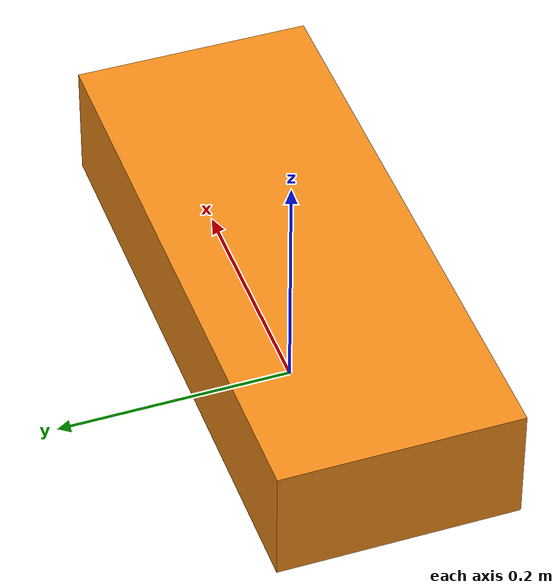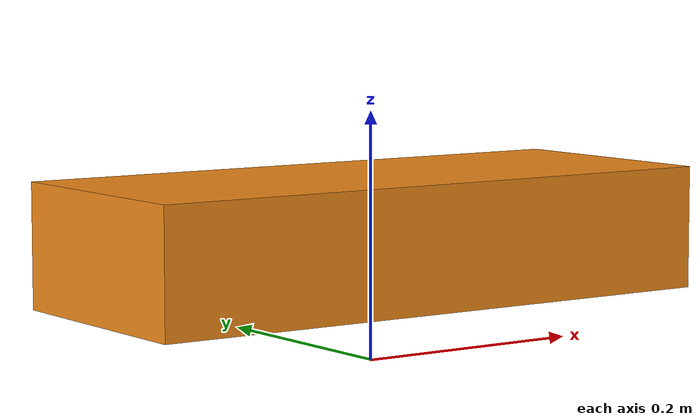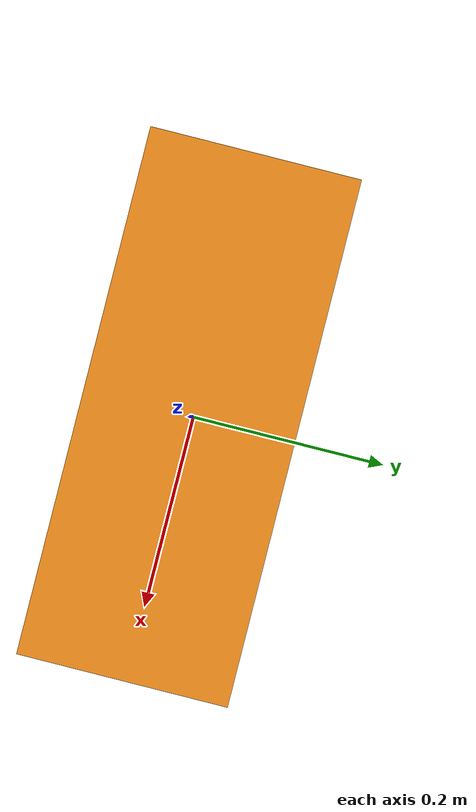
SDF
<?xml version='1.0'?>
<sdf version='1.4'>
<model name="mobot" xmlns:xacro="http://www.ros.org/wiki/xacro">
<!-- описание модели между тэгами model -->

<!-- Описание шасси -->
  <link name='chassis'>

    <pose> 0 0 0.1 0 0 0 </pose>

    <collision name='collision'>
      <geometry>
        <box>
          <size> 0.5 0.5 0.1 </size>
        </box>
      </geometry>
    </collision>

    <visual name='visual'>
      <geometry>
        <box>
          <size>0.5 0.2 0.1 </size>
        </box>
      </geometry>
      <material>
        <script>
          <name> Gazebo/Orange</name>
          <uri> __default__ </uri>
        </script>
      </material>
    </visual>

    <inertial>
      <inertia>
        <ixx>0.2</ixx>
        <iyy>0.3</iyy>
        <izz>0.2</izz>
        <ixy>0</ixy>
        <ixz>0</ixz>
        <iyz>0</iyz>
      </inertia>
    </inertial>

  </link>

</model>

</sdf>
